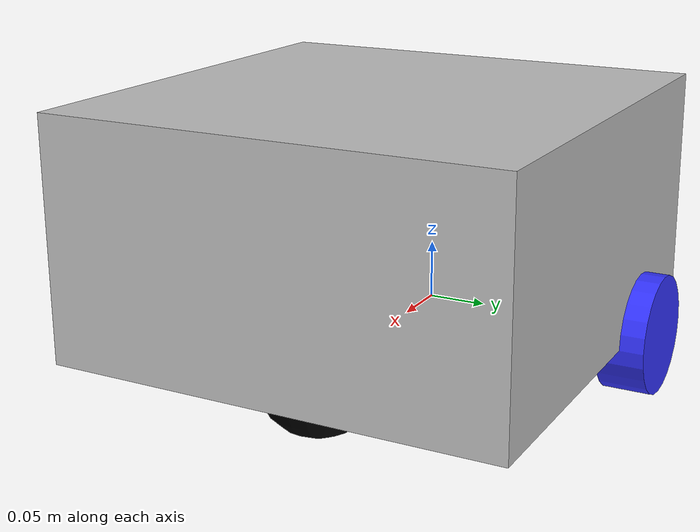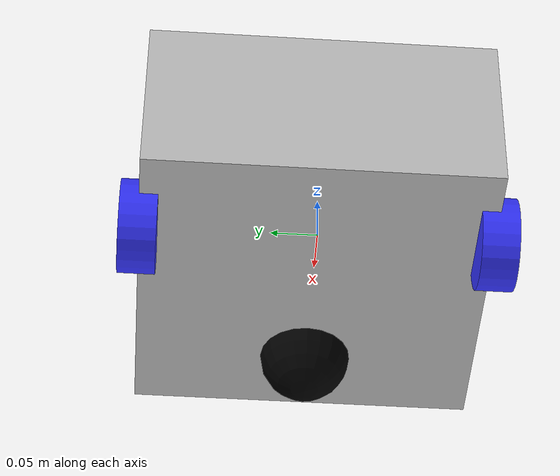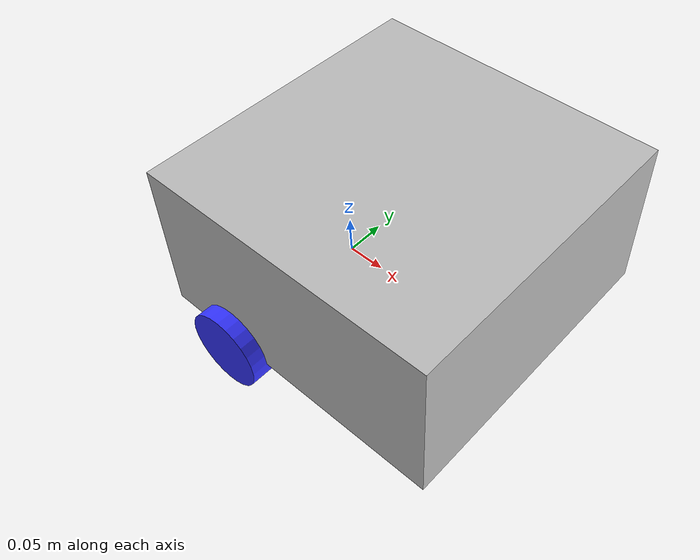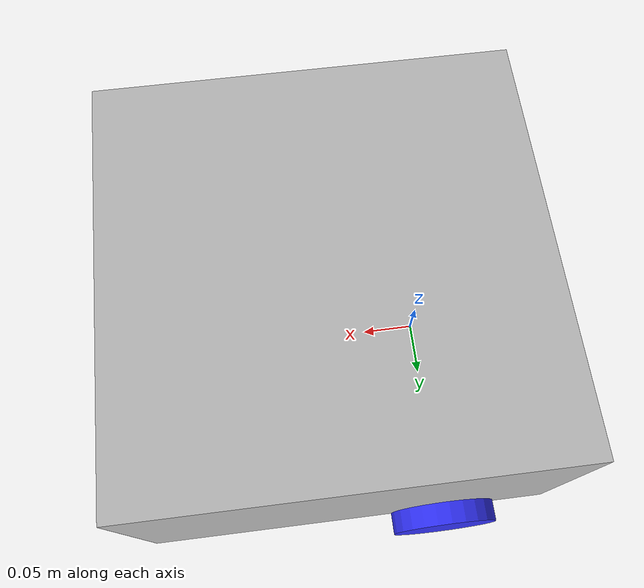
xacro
<?xml version="1.0"?>
<robot xmlns:xacro="http://www.ros.org/wiki/xacro">

    <xacro:include filename="inertial_macros.xacro"/>

    <material name="silver">
        <color rgba="0.75 0.75 0.75 1"/>
    </material>

    <material name="black">
        <color rgba="0 0 0 1"/>
    </material>

    <material name="blue">
        <color rgba="0.2 0.2 1 1"/>
    </material>

    <material name="red">
        <color rgba="1 0.2 0.2 1"/>
    </material>

    <!-- Base Link -->
    <link name="base_link">

    </link>

    <!-- Chassis Link -->
    <joint name="chassis_joint" type="fixed">
        <parent link="base_link"/>
        <child link="chassis"/>
        <origin xyz="-0.1 0 0"/>
    </joint>

    <link name="chassis">
        <visual>
            <origin xyz="0.19 0 0.1"/>
            <geometry>
                <box size="0.38 0.38 0.2"/>
            </geometry>
            <material name="silver"/>
        </visual>

        <collision>
            <origin xyz="0.19 0 0.1"/>
            <geometry>
                <box size="0.38 0.38 0.2"/>
            </geometry>
        </collision>
        <xacro:inertial_box mass="0.5" x="0.38" y="0.38" z="0.2">
            <origin xyz="0.19 0 0.1" rpy="0 0 0"/>
        </xacro:inertial_box>
    </link>

    <gazebo reference="chassis">
        <material>Gazebo/White</material>
    </gazebo>

    <!-- Left Wheel Link -->
    <joint name="left_wheel_joint" type="continuous">
        <parent link="base_link"/>
        <child link="left_wheel"/>
        <origin xyz="0 0.19 0" rpy="-${pi/2} 0 0"/>
        <axis xyz="0 0 1"/>
    </joint>

    <link name="left_wheel">
        <visual>
            <geometry>
                <cylinder radius="0.05" length="0.04"/>
            </geometry>
            <material name="blue"/>
        </visual>
        <collision>
            <geometry>
                <cylinder radius="0.05" length="0.04"/>
            </geometry>
        </collision>
        <xacro:inertial_cylinder mass="0.1" length="0.04" radius="0.05">
            <origin xyz="0 0 0" rpy="0 0 0"/>
        </xacro:inertial_cylinder>
    </link>
    <gazebo reference="left_wheel">
        <material>Gazebo/Blue</material>
    </gazebo>

    <!-- Right Wheel Link -->
    <joint name="right_wheel_joint" type="continuous">
        <parent link="base_link"/>
        <child link="right_wheel"/>
        <origin xyz="0 -0.19 0" rpy="${pi/2} 0 0"/>
        <axis xyz="0 0 -1"/>
    </joint>

    <link name="right_wheel">
        <visual>
            <geometry>
                <cylinder radius="0.05" length="0.04"/>
            </geometry>
            <material name="blue"/>
        </visual>
        <collision>
            <geometry>
                <cylinder radius="0.05" length="0.04"/>
            </geometry>
        </collision>
        <xacro:inertial_cylinder mass="0.1" length="0.04" radius="0.05">
            <origin xyz="0 0 0" rpy="0 0 0"/>
        </xacro:inertial_cylinder>
    </link>
    <gazebo reference="right_wheel">
        <material>Gazebo/Blue</material>
    </gazebo>

    <!-- Caster Wheel Link -->
    <joint name="caster_wheel_joint" type="fixed">
        <parent link="chassis"/>
        <child link="caster_wheel"/>
        <origin xyz="0.3 0 0"/>
    </joint>

    <link name="caster_wheel">
        <visual>
            <geometry>
                <sphere radius="0.05"/>
            </geometry>
            <material name="black"/>
        </visual>
        <collision>
            <geometry>
                <sphere radius="0.05"/>
            </geometry>
        </collision>
        <xacro:inertial_sphere mass="0.1" radius="0.05">
            <origin xyz="0 0 0" rpy="0 0 0"/>
        </xacro:inertial_sphere>
    </link>
    <gazebo reference="caster_wheel">
        <material>Gazebo/Black</material>
        <!-- Set near-zero friction -->
        <mu1 value="0.001"/>
        <mu2 value="0.001"/>
    </gazebo>

</robot>
